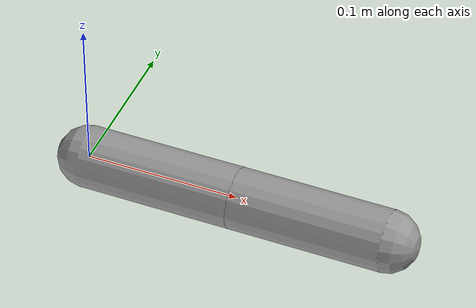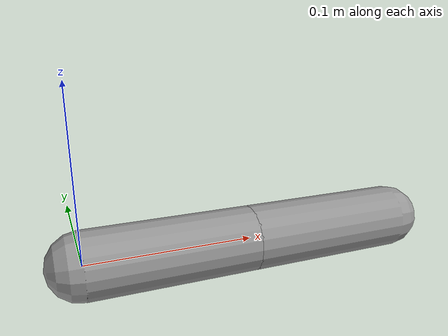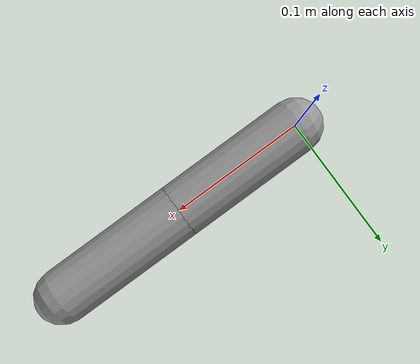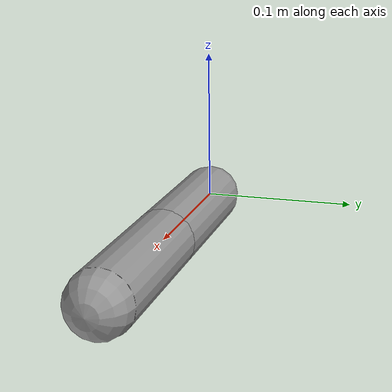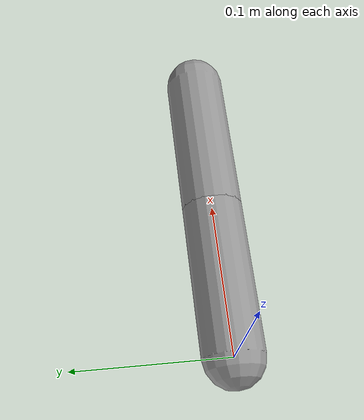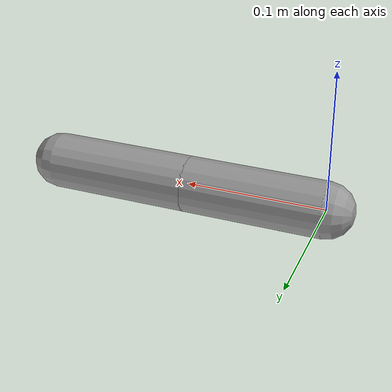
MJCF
<mujoco model="2dof_rr_robot">
    <compiler angle="radian" coordinate="local" />
    <option gravity="0 0 -9.81" />

    <default>
        <joint limited="true" range="-3.14 3.14" damping="0.1" />
        <geom type="capsule" size="0.02 0.1" rgba="0.6 0.6 0.6 1" />
    </default>

    <worldbody>
        <body name="link1" pos="0 0 0">
            <inertial pos="0.05 0 0" mass="0.5" diaginertia="0.001 0.001 0.002" />
            <joint name="joint1" type="hinge" axis="0 0 1" />
            <geom fromto="0 0 0 0.1 0 0" />
            <body name="link2" pos="0.1 0 0">
                <inertial pos="0.05 0 0" mass="0.3" diaginertia="0.0005 0.0005 0.001" />
                <joint name="joint2" type="hinge" axis="0 0 1" />
                <geom fromto="0 0 0 0.1 0 0" />
                <site name="endeffector" pos="0.1 0 0" size="0.01" rgba="1 0 0 1" />
            </body>
        </body>
    </worldbody>

    <actuator>
        <motor joint="joint1" ctrlrange="-5 5" gear="1" />
        <motor joint="joint2" ctrlrange="-5 5" gear="1" />
    </actuator>
</mujoco>
